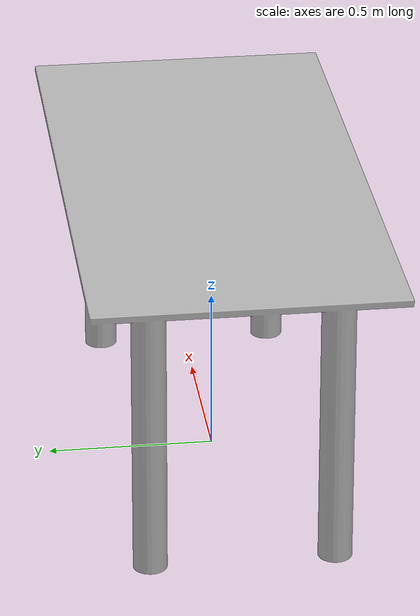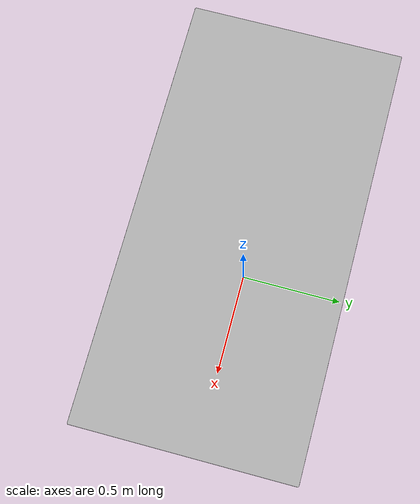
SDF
<?xml version="1.0" ?>
<sdf version="1.6">
  <model name="table">
    <static>true</static>
    <link name="link">
      <collision name="collision">
        <geometry>
          <mesh>
            <uri>model://table/meshes/RegolobotTable.dae</uri>
            <scale>1 1 1</scale>
          </mesh>
        </geometry>
      </collision>
      <visual name="visual">
        <geometry>
          <mesh>
            <uri>model://table/meshes/RegolobotTable.dae</uri>
            <scale>1 1 1</scale>
          </mesh>
        </geometry>
      </visual>
    </link>
  </model>
</sdf>
